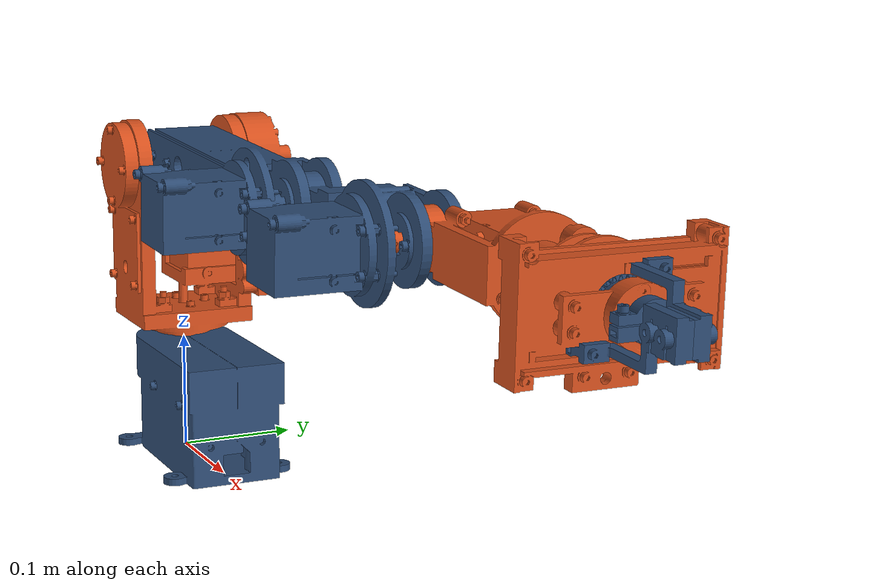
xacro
<?xml version="1.0"?>
<!-- START HERE: this short file assembles the smaller files below. -->
<!-- Read HOW_TO_READ_THE_ROBOT.md first. RViz launch expands this file automatically. -->
<robot name="compact_five_axis_arm" xmlns:xacro="http://www.ros.org/wiki/xacro">

  <!-- Stationary base and bench reference. -->
  <xacro:include filename="parts/00_base.xacro" />

  <!-- J1: rotate the whole arm around the vertical base axis. -->
  <xacro:include filename="parts/01_j1_rotation.xacro" />

  <!-- J2: lift the upper arm about the shoulder axis. -->
  <xacro:include filename="parts/02_j2_shoulder.xacro" />

  <!-- J3: bend the forearm at the elbow. -->
  <xacro:include filename="parts/03_j3_elbow.xacro" />

  <!-- J4: bend the wrist. -->
  <xacro:include filename="parts/04_j4_wrist_bend.xacro" />

  <!-- J5: rotate the tool, then locate its mounting face. -->
  <xacro:include filename="parts/05_j5_tool_rotation.xacro" />

  <!-- Fixed gripper frame and gripping reference point. -->
  <xacro:include filename="parts/06_gripper_mount.xacro" />

  <!-- Opposed fingers and linked pinion; no actuator is selected. -->
  <xacro:include filename="parts/07_gripper_fingers.xacro" />

  <!-- Motor rotor visualization for the two belt drives. -->
  <xacro:include filename="parts/08_motor_visuals.xacro" />
</robot>

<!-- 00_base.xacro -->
<robot xmlns:xacro="http://www.ros.org/wiki/xacro">
  <!-- Stationary base and bench reference. Distances in meters; angles in radians. -->
  <!-- world: reference frame only; it has no visible shape. -->
  <link name="world" />
  <!-- base_link: a rigid assembly of parts. The mesh supplies its shape; visual is appearance, collision is contact geometry. -->
  <link name="base_link">
    <visual>
      <geometry>
        <mesh filename="package://robotic_arm_description/meshes/base_link.stl" />
      </geometry>
      <material name="base_link_color">
        <color rgba="0.18 0.30 0.46 1" />
      </material>
    </visual>
    <collision>
      <geometry>
        <mesh filename="package://robotic_arm_description/meshes/base_link.stl" />
      </geometry>
    </collision>
  </link>
  <!-- world_to_base: connects world to base_link. Origin locates the joint in the parent frame. -->
  <joint name="world_to_base" type="fixed">
    <parent link="world" />
    <child link="base_link" />
    <origin xyz="0 0 0" rpy="0 0 0" />
  </joint>
</robot>

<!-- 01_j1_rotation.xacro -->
<robot xmlns:xacro="http://www.ros.org/wiki/xacro">
  <!-- J1: rotate the whole arm around the vertical base axis. Distances in meters; angles in radians. -->
  <!-- shoulder_link: a rigid assembly of parts. The mesh supplies its shape; visual is appearance, collision is contact geometry. -->
  <link name="shoulder_link">
    <visual>
      <geometry>
        <mesh filename="package://robotic_arm_description/meshes/shoulder_link.stl" />
      </geometry>
      <material name="shoulder_link_color">
        <color rgba="0.85 0.32 0.12 1" />
      </material>
    </visual>
    <collision>
      <geometry>
        <mesh filename="package://robotic_arm_description/meshes/shoulder_link.stl" />
      </geometry>
    </collision>
  </link>
  <!-- j1: connects base_link to shoulder_link. Origin locates the joint in the parent frame. Axis gives the movement direction in the joint frame. Range: -160.0 to 160.0 degrees. -->
  <joint name="j1" type="revolute">
    <parent link="base_link" />
    <child link="shoulder_link" />
    <origin xyz="0 0 0" rpy="0 0 0" />
    <axis xyz="0 0 1" />
    <limit lower="-2.792526803190927" upper="2.792526803190927" effort="0" velocity="0.5235987755982988" />
  </joint>
</robot>

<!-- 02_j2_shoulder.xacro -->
<robot xmlns:xacro="http://www.ros.org/wiki/xacro">
  <!-- J2: lift the upper arm about the shoulder axis. Distances in meters; angles in radians. -->
  <!-- upper_arm_link: a rigid assembly of parts. The mesh supplies its shape; visual is appearance, collision is contact geometry. -->
  <link name="upper_arm_link">
    <visual>
      <geometry>
        <mesh filename="package://robotic_arm_description/meshes/upper_arm_link.stl" />
      </geometry>
      <material name="upper_arm_link_color">
        <color rgba="0.18 0.30 0.46 1" />
      </material>
    </visual>
    <collision>
      <geometry>
        <mesh filename="package://robotic_arm_description/meshes/upper_arm_link.stl" />
      </geometry>
    </collision>
  </link>
  <!-- j2: connects shoulder_link to upper_arm_link. Origin locates the joint in the parent frame. Axis gives the movement direction in the joint frame. Range: -30.0 to 90.0 degrees. -->
  <joint name="j2" type="revolute">
    <parent link="shoulder_link" />
    <child link="upper_arm_link" />
    <origin xyz="0 0 0.257468465415" rpy="0 0 0" />
    <axis xyz="0 -1 0" />
    <limit lower="-0.5235987755982988" upper="1.5707963267948966" effort="0" velocity="0.5235987755982988" />
  </joint>
</robot>

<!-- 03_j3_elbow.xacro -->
<robot xmlns:xacro="http://www.ros.org/wiki/xacro">
  <!-- J3: bend the forearm at the elbow. Distances in meters; angles in radians. -->
  <!-- forearm_link: a rigid assembly of parts. The mesh supplies its shape; visual is appearance, collision is contact geometry. -->
  <link name="forearm_link">
    <visual>
      <geometry>
        <mesh filename="package://robotic_arm_description/meshes/forearm_link.stl" />
      </geometry>
      <material name="forearm_link_color">
        <color rgba="0.18 0.30 0.46 1" />
      </material>
    </visual>
    <collision>
      <geometry>
        <mesh filename="package://robotic_arm_description/meshes/forearm_link.stl" />
      </geometry>
    </collision>
  </link>
  <!-- j3: connects upper_arm_link to forearm_link. Origin locates the joint in the parent frame. Axis gives the movement direction in the joint frame. Range: -115.0 to 115.0 degrees. -->
  <joint name="j3" type="revolute">
    <parent link="upper_arm_link" />
    <child link="forearm_link" />
    <origin xyz="0.25 0 0" rpy="0 0 0" />
    <axis xyz="0 -1 0" />
    <limit lower="-2.007128639793479" upper="2.007128639793479" effort="0" velocity="0.5235987755982988" />
  </joint>
</robot>

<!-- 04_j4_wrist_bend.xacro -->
<robot xmlns:xacro="http://www.ros.org/wiki/xacro">
  <!-- J4: bend the wrist. Distances in meters; angles in radians. -->
  <!-- wrist_link: a rigid assembly of parts. The mesh supplies its shape; visual is appearance, collision is contact geometry. -->
  <link name="wrist_link">
    <visual>
      <geometry>
        <mesh filename="package://robotic_arm_description/meshes/wrist_link.stl" />
      </geometry>
      <material name="wrist_link_color">
        <color rgba="0.85 0.32 0.12 1" />
      </material>
    </visual>
    <collision>
      <geometry>
        <mesh filename="package://robotic_arm_description/meshes/wrist_link.stl" />
      </geometry>
    </collision>
  </link>
  <!-- j4: connects forearm_link to wrist_link. Origin locates the joint in the parent frame. Axis gives the movement direction in the joint frame. Range: -90.0 to 90.0 degrees. -->
  <joint name="j4" type="revolute">
    <parent link="forearm_link" />
    <child link="wrist_link" />
    <origin xyz="0.144883953563 0.03 -0.0058" rpy="0 0 0" />
    <axis xyz="0 -1 0" />
    <limit lower="-1.5707963267948966" upper="1.5707963267948966" effort="0" velocity="0.5235987755982988" />
  </joint>
</robot>

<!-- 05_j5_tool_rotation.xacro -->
<robot xmlns:xacro="http://www.ros.org/wiki/xacro">
  <!-- J5: rotate the tool, then locate its mounting face. Distances in meters; angles in radians. -->
  <!-- tool_link: a rigid assembly of parts. The mesh supplies its shape; visual is appearance, collision is contact geometry. -->
  <link name="tool_link">
    <visual>
      <geometry>
        <mesh filename="package://robotic_arm_description/meshes/tool_link.stl" />
      </geometry>
      <material name="tool_link_color">
        <color rgba="0.18 0.30 0.46 1" />
      </material>
    </visual>
    <collision>
      <geometry>
        <mesh filename="package://robotic_arm_description/meshes/tool_link.stl" />
      </geometry>
    </collision>
  </link>
  <!-- tool_flange: reference frame only; it has no visible shape. -->
  <link name="tool_flange" />
  <!-- j5: connects wrist_link to tool_link. Origin locates the joint in the parent frame. Axis gives the movement direction in the joint frame. Range: -160.0 to 160.0 degrees. -->
  <joint name="j5" type="revolute">
    <parent link="wrist_link" />
    <child link="tool_link" />
    <origin xyz="0.145883153243 0.0455 -0.00584" rpy="0 0 0" />
    <axis xyz="-0.999199679744 0 0.04" />
    <limit lower="-2.792526803190927" upper="2.792526803190927" effort="0" velocity="0.5235987755982988" />
  </joint>
  <!-- tool_flange_fixed: connects tool_link to tool_flange. Origin locates the joint in the parent frame. -->
  <joint name="tool_flange_fixed" type="fixed">
    <parent link="tool_link" />
    <child link="tool_flange" />
    <origin xyz="0.0359711884708 0 -0.00144" rpy="-1.61080700115 0 -1.57079632679" />
  </joint>
</robot>

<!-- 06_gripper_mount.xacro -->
<robot xmlns:xacro="http://www.ros.org/wiki/xacro">
  <!-- Fixed gripper frame and gripping reference point. Distances in meters; angles in radians. -->
  <!-- gripper_base: a rigid assembly of parts. The mesh supplies its shape; visual is appearance, collision is contact geometry. -->
  <link name="gripper_base">
    <visual>
      <geometry>
        <mesh filename="package://robotic_arm_description/meshes/gripper_base.stl" />
      </geometry>
      <material name="gripper_base_color">
        <color rgba="0.85 0.32 0.12 1" />
      </material>
    </visual>
    <collision>
      <geometry>
        <mesh filename="package://robotic_arm_description/meshes/gripper_base.stl" />
      </geometry>
    </collision>
  </link>
  <!-- grasp_tcp: reference frame only; it has no visible shape. -->
  <link name="grasp_tcp" />
  <!-- gripper_mount_fixed: connects tool_flange to gripper_base. Origin locates the joint in the parent frame. -->
  <joint name="gripper_mount_fixed" type="fixed">
    <parent link="tool_flange" />
    <child link="gripper_base" />
    <origin xyz="0 0 0" rpy="0 0 0" />
  </joint>
  <!-- grasp_tcp_fixed: connects gripper_base to grasp_tcp. Origin locates the joint in the parent frame. -->
  <joint name="grasp_tcp_fixed" type="fixed">
    <parent link="gripper_base" />
    <child link="grasp_tcp" />
    <origin xyz="0 0 0.096" rpy="0 0 0" />
  </joint>
</robot>

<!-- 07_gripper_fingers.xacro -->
<robot xmlns:xacro="http://www.ros.org/wiki/xacro">
  <!-- Opposed fingers and linked pinion; no actuator is selected. Distances in meters; angles in radians. -->
  <!-- right_jaw: a rigid assembly of parts. The mesh supplies its shape; visual is appearance, collision is contact geometry. -->
  <link name="right_jaw">
    <visual>
      <geometry>
        <mesh filename="package://robotic_arm_description/meshes/right_jaw.stl" />
      </geometry>
      <material name="right_jaw_color">
        <color rgba="0.18 0.30 0.46 1" />
      </material>
    </visual>
    <collision>
      <geometry>
        <mesh filename="package://robotic_arm_description/meshes/right_jaw.stl" />
      </geometry>
    </collision>
  </link>
  <!-- left_jaw: a rigid assembly of parts. The mesh supplies its shape; visual is appearance, collision is contact geometry. -->
  <link name="left_jaw">
    <visual>
      <geometry>
        <mesh filename="package://robotic_arm_description/meshes/left_jaw.stl" />
      </geometry>
      <material name="left_jaw_color">
        <color rgba="0.18 0.30 0.46 1" />
      </material>
    </visual>
    <collision>
      <geometry>
        <mesh filename="package://robotic_arm_description/meshes/left_jaw.stl" />
      </geometry>
    </collision>
  </link>
  <!-- gripper_pinion: a rigid assembly of parts. The mesh supplies its shape; visual is appearance, collision is contact geometry. -->
  <link name="gripper_pinion">
    <visual>
      <geometry>
        <mesh filename="package://robotic_arm_description/meshes/gripper_pinion.stl" />
      </geometry>
      <material name="gripper_pinion_color">
        <color rgba="0.18 0.30 0.46 1" />
      </material>
    </visual>
    <collision>
      <geometry>
        <mesh filename="package://robotic_arm_description/meshes/gripper_pinion.stl" />
      </geometry>
    </collision>
  </link>
  <joint name="gripper_opening" type="prismatic">
    <parent link="gripper_base" />
    <child link="right_jaw" />
    <origin xyz="0 0 0" rpy="0 0 0" />
    <axis xyz="1 0 0" />
    <limit lower="0" upper="0.03" effort="0" velocity="0.02" />
  </joint>
  <joint name="left_jaw_mimic" type="prismatic">
    <parent link="gripper_base" />
    <child link="left_jaw" />
    <origin xyz="0 0 0" rpy="0 0 0" />
    <axis xyz="-1 0 0" />
    <limit lower="0" upper="0.03" effort="0" velocity="0.02" />
    <mimic joint="gripper_opening" multiplier="1" offset="0" />
  </joint>
  <joint name="gripper_pinion_mimic" type="revolute">
    <parent link="gripper_base" />
    <child link="gripper_pinion" />
    <origin xyz="0 0 0" rpy="0 0 0" />
    <axis xyz="0 0 1" />
    <limit lower="-1.6666666666666667" upper="0" effort="0" velocity="0.5235987755982988" />
    <mimic joint="gripper_opening" multiplier="-55.55555555555556" offset="0" />
  </joint>
</robot>

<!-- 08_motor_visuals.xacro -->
<robot xmlns:xacro="http://www.ros.org/wiki/xacro">
  <!-- Motor rotor visualization for the two belt drives. Distances in meters; angles in radians. -->
  <!-- base_motor_rotor: a rigid assembly of parts. The mesh supplies its shape; visual is appearance, collision is contact geometry. -->
  <link name="base_motor_rotor">
    <visual>
      <geometry>
        <mesh filename="package://robotic_arm_description/meshes/base_motor_rotor.stl" />
      </geometry>
      <material name="base_motor_rotor_color">
        <color rgba="0.18 0.30 0.46 1" />
      </material>
    </visual>
    <collision>
      <geometry>
        <mesh filename="package://robotic_arm_description/meshes/base_motor_rotor.stl" />
      </geometry>
    </collision>
  </link>
  <!-- shoulder_motor_rotor: a rigid assembly of parts. The mesh supplies its shape; visual is appearance, collision is contact geometry. -->
  <link name="shoulder_motor_rotor">
    <visual>
      <geometry>
        <mesh filename="package://robotic_arm_description/meshes/shoulder_motor_rotor.stl" />
      </geometry>
      <material name="shoulder_motor_rotor_color">
        <color rgba="0.18 0.30 0.46 1" />
      </material>
    </visual>
    <collision>
      <geometry>
        <mesh filename="package://robotic_arm_description/meshes/shoulder_motor_rotor.stl" />
      </geometry>
    </collision>
  </link>
  <joint name="j1_motor_rotation" type="revolute">
    <parent link="base_link" />
    <child link="base_motor_rotor" />
    <origin xyz="0.0724684654151 0 0.072" rpy="0 0 0" />
    <axis xyz="0 0 1" />
    <limit lower="-12" upper="12" effort="0" velocity="0.5235987755982988" />
    <mimic joint="j1" multiplier="4" offset="0" />
  </joint>
  <joint name="j2_motor_rotation" type="revolute">
    <parent link="shoulder_link" />
    <child link="shoulder_motor_rotor" />
    <origin xyz="0 0.051 0.185" rpy="0 0 0" />
    <axis xyz="0 1 0" />
    <limit lower="-12" upper="12" effort="0" velocity="0.5235987755982988" />
    <mimic joint="j2" multiplier="-4" offset="0" />
  </joint>
</robot>
